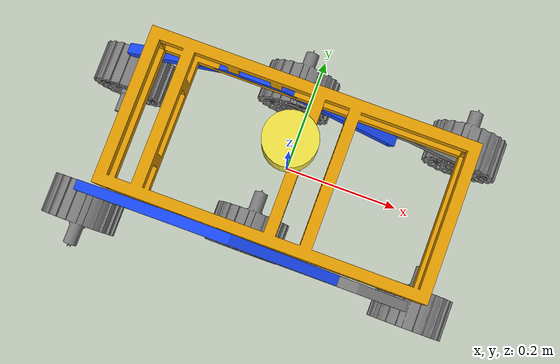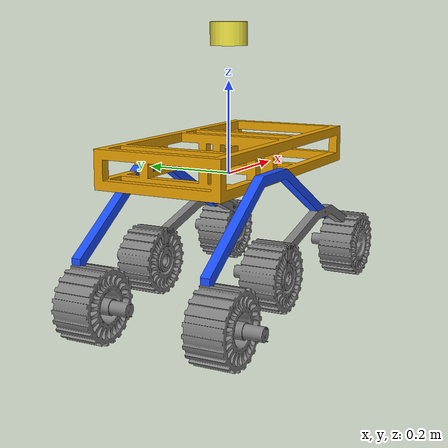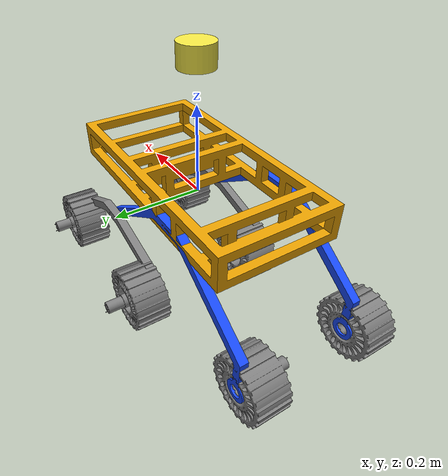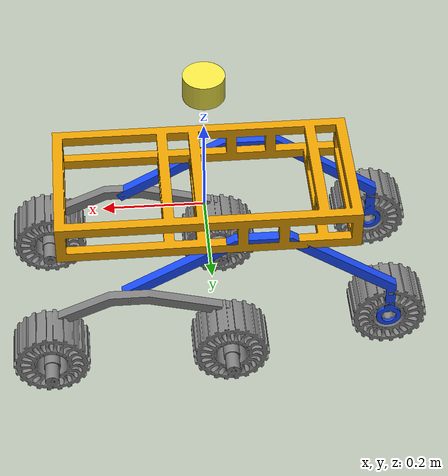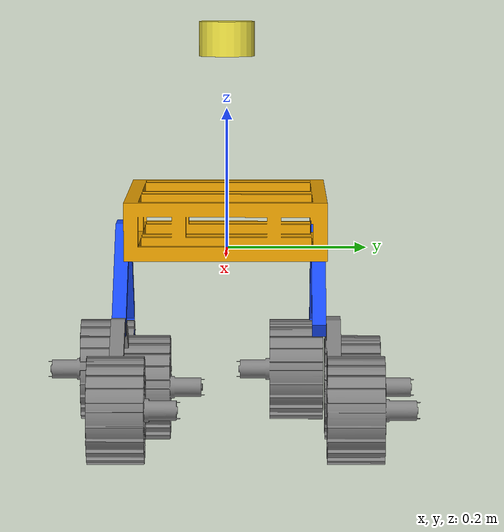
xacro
<?xml version="1.0"?>

<robot name="my_rover"
       xmlns:xacro="http://www.ros.org/wiki/xacro">

    <!-- Includes -->
    <xacro:include filename="$(find my_rover_description)/urdf/links/base_link.xacro"/>
    <xacro:include filename="$(find my_rover_description)/urdf/links/rocker.xacro"/>
    <xacro:include filename="$(find my_rover_description)/urdf/links/bogie.xacro"/>
    <xacro:include filename="$(find my_rover_description)/urdf/links/wheel.xacro"/>
    <xacro:include filename="$(find my_rover_description)/urdf/properties.xacro"/>

    <!-- Base -->
    <xacro:base_link/>

    <!-- ROCKERS                                             -->

    <xacro:rocker
        name="left_rocker"
        parent="base_link"
        xyz="-0.1037985 0.1413 0.02"
        rpy="1.5708 0 0"/>

    <xacro:rocker
        name="right_rocker"
        parent="base_link"
        xyz="-0.1037985 -0.1413 0.02"
        rpy="1.5708 0 0"/>

    <!-- BOGIES                                              -->

   <xacro:bogie
    name="left_bogie"
    parent="left_rocker"
    xyz="0.26214225 -0.20  -0.10"
    rpy="3.14159 0 0"/>

   <xacro:bogie
    name="right_bogie"
    parent="right_rocker"
    xyz="0.26214225 -0.20 -0.08"
    rpy="-3.14159 0 0"/>

    <!-- rear left                                 -->

    <xacro:wheel
        name="left_rear_wheel"
        parent="left_rocker"
        xyz="-0.25707953 -0.22712987 0"
        rpy="0 0 0"/>

    <!-- rear right                                   -->

    <xacro:wheel
        name="right_rear_wheel"
        parent="right_rocker"
        xyz="-0.25707953 -0.22712987 0"
        rpy="0 0 0"/>

    <!-- RIGHT REAR                                         -->

    <xacro:wheel
        name="right_middle_wheel"
        parent="right_bogie"
        xyz="-0.195206085 0.025 -0.100411217"
        rpy="0 0 0"/>
    <!-- LEFT REAR                                          -->

    <xacro:wheel
        name="left_middle_wheel"
        parent="left_bogie"
        xyz="-0.195206085 0.025 -0.100411217"
        rpy="0 0 0"/>

    <!-- RIGHT MIDDLE                                       -->

    <xacro:wheel
        name="right_front_wheel"
        parent="right_bogie"
        xyz="0.157949245 0.025 -0.130411217"
        rpy="0 0 0"/>

    <!-- LEFT                                        -->

    <xacro:wheel
        name="left_front_wheel"
        parent="left_bogie"
        xyz="0.157949245 0.025 -0.100411217"
        rpy="0 0 0"/>

  <!-- Simulated LiDAR -->
  <link name="lidar_link">
    <visual>
      <geometry>
        <cylinder radius="0.04" length="0.05"/>
      </geometry>
    </visual>

    <collision>
      <geometry>
        <cylinder radius="0.04" length="0.05"/>
      </geometry>
    </collision>

    <inertial>
      <mass value="0.1"/>
      <inertia
        ixx="0.0001"
        ixy="0.0"
        ixz="0.0"
        iyy="0.0001"
        iyz="0.0"
        izz="0.0001"/>
    </inertial>
  </link>

  <joint name="lidar_joint" type="fixed">
    <parent link="base_link"/>
    <child link="lidar_link"/>
    <origin xyz="0 0 0.30" rpy="0 0 0"/>
  </joint>
    <gazebo reference="lidar_link">
    <sensor name="lidar" type="gpu_lidar">
  <topic>/scan</topic>
  <update_rate>10</update_rate>

  <ray>
    <scan>
      <horizontal>
        <samples>360</samples>
        <resolution>1</resolution>
        <min_angle>-3.14159</min_angle>
        <max_angle>3.14159</max_angle>
      </horizontal>
    </scan>

    <range>
      <min>0.12</min>
      <max>12.0</max>
      <resolution>0.01</resolution>
    </range>
  </ray>

  <always_on>true</always_on>
  <visualize>true</visualize>
</sensor>
  </gazebo>

  <ros2_control name="GazeboSystem" type="system">
    <hardware>
      <plugin>gz_ros2_control/GazeboSimSystem</plugin>
    </hardware>

    <joint name="left_front_wheel_joint">
      <command_interface name="velocity"/>
      <state_interface name="position"/>
      <state_interface name="velocity"/>
    </joint>

    <joint name="left_middle_wheel_joint">
      <command_interface name="velocity"/>
      <state_interface name="position"/>
      <state_interface name="velocity"/>
    </joint>

    <joint name="left_rear_wheel_joint">
      <command_interface name="velocity"/>
      <state_interface name="position"/>
      <state_interface name="velocity"/>
    </joint>

    <joint name="right_front_wheel_joint">
      <command_interface name="velocity"/>
      <state_interface name="position"/>
      <state_interface name="velocity"/>
    </joint>

    <joint name="right_middle_wheel_joint">
      <command_interface name="velocity"/>
      <state_interface name="position"/>
      <state_interface name="velocity"/>
    </joint>

    <joint name="right_rear_wheel_joint">
      <command_interface name="velocity"/>
      <state_interface name="position"/>
      <state_interface name="velocity"/>
    </joint>
  </ros2_control>

    <gazebo>
    <plugin
      filename="gz_ros2_control-system"
      name="gz_ros2_control::GazeboSimROS2ControlPlugin">
      <parameters>$(find my_rover_description)/config/ros2_controllers.yaml</parameters>
    </plugin>
  </gazebo>

</robot>

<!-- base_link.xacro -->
<robot xmlns:xacro="http://www.ros.org/wiki/xacro">

    <xacro:macro name="base_link">

        <link name="base_link">

            <inertial>
                <origin
                    xyz="-0.013341170590699567 0.0 0.01"
                    rpy="0 0 0"/>

                <mass value="7.495180000000002"/>

                <inertia
                    ixx="0.08260502054366667"
                    ixy="4.5693013817071915e-17"
                    ixz="8.673617379884035e-19"
                    iyy="0.2689295125124481"
                    iyz="0.0"
                    izz="0.3510348543894482"/>
            </inertial>

            <visual>
                <origin xyz="0 0 0" rpy="0 0 0"/>

                <geometry>
                    <mesh
                        filename="package://my_rover_description/meshes/visual/base_link.stl"
                        scale="0.001 0.001 0.001"/>
                </geometry>
            </visual>

            <collision>
                <origin xyz="0 0 0" rpy="0 0 0"/>

                <geometry>
                    <mesh
                        filename="package://my_rover_description/meshes/visual/base_link.stl"
                        scale="0.001 0.001 0.001"/>
                </geometry>
            </collision>

        </link>

    </xacro:macro>

</robot>

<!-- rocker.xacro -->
<robot xmlns:xacro="http://www.ros.org/wiki/xacro">

  <xacro:macro name="rocker" params="name parent xyz rpy">

    <link name="${name}">

      <inertial>
        <origin xyz="0 0 0" rpy="0 0 0"/>
        <mass value="2.284844437127401"/>

        <inertia
          ixx="0.010865956621585498"
          ixy="-0.013180993446849481"
          ixz="-1.27e-18"
          iyy="0.06708516759397543"
          iyz="1.15e-17"
          izz="0.07779880125307026"/>
      </inertial>

      <visual>
        <origin xyz="0 0 0" rpy="0 0 0"/>
        <geometry>
          <mesh
            filename="package://my_rover_description/meshes/visual/rocker_link.stl"
            scale="0.001 0.001 0.001"/>
        </geometry>

        <material name="blue">
          <color rgba="0.1 0.3 1.0 1.0"/>
        </material>
      </visual>

      <collision>
        <origin xyz="0 0 0" rpy="0 0 0"/>
        <geometry>
          <mesh
            filename="package://my_rover_description/meshes/visual/rocker_link.stl"
            scale="0.001 0.001 0.001"/>
        </geometry>
      </collision>

    </link>

    <joint name="${name}_joint" type="revolute">

      <origin xyz="${xyz}" rpy="${rpy}"/>

      <parent link="${parent}"/>
      <child link="${name}"/>

      <axis xyz="0 0 1"/>

      <limit
        lower="-0.610865"
        upper="0.610865"
        effort="1000"
        velocity="2.0"/>

      <dynamics
        damping="5.0"
        friction="0.5"/>

    </joint>

  </xacro:macro>

</robot>

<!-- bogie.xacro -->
<robot xmlns:xacro="http://www.ros.org/wiki/xacro">

  <xacro:macro name="bogie" params="name parent xyz rpy">

    <link name="${name}">

      <inertial>
        <origin xyz="0 0 0" rpy="0 0 0"/>
        <mass value="1.7494588983667054"/>

        <inertia
          ixx="0.0027534717804587362"
          ixy="-7.962312379821606e-06"
          ixz="-1.09e-17"
          iyy="0.030789481894890357"
          iyz="2.49e-19"
          izz="0.03342632308212458"/>
      </inertial>

      <visual>
        <origin xyz="0 0 0" rpy="0 0 0"/>

        <geometry>
          <mesh
            filename="package://my_rover_description/meshes/visual/bogie.stl"
            scale="0.001 0.001 0.001"/>
        </geometry>

        <material name="gray">
  <color rgba="0.5 0.5 0.5 1.0"/>
</material>
      </visual>

      <collision>
        <origin xyz="0 0 0" rpy="0 0 0"/>

        <geometry>
          <mesh
            filename="package://my_rover_description/meshes/visual/bogie.stl"
            scale="0.001 0.001 0.001"/>
        </geometry>
      </collision>

    </link>

    <joint name="${name}_joint" type="revolute">

      <origin xyz="${xyz}" rpy="${rpy}"/>

      <parent link="${parent}"/>
      <child link="${name}"/>

      <axis xyz="0 0 1"/>

      <limit
        lower="-0.610865"
        upper="0.523599"
        effort="1000"
        velocity="2.0"/>

      <dynamics
        damping="3.0"
        friction="0.5"/>

    </joint>

  </xacro:macro>

</robot>

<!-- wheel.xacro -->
<robot xmlns:xacro="http://www.ros.org/wiki/xacro">

  <xacro:macro name="wheel"
               params="name parent xyz rpy">

    <link name="${name}">

      <inertial>
        <origin xyz="0 0 0" rpy="0 0 0"/>
        <mass value="1.25"/>

        <inertia
          ixx="0.002753"
          ixy="7.82e-10"
          ixz="7.70e-10"
          iyy="0.002753"
          iyz="-1.09e-10"
          izz="0.004233"/>
      </inertial>

      <visual>

        <origin xyz="0 0 0"
                rpy="0 0 0"/>

        <geometry>

          <mesh
            filename="package://my_rover_description/meshes/visual/right_front_wheel.stl"
            scale="${mesh_scale}"/>

        </geometry>

       <material name="gray">
  <color rgba="0.5 0.5 0.5 1.0"/>
</material>

      </visual>

      <collision>

        <origin xyz="0 0 0"
                rpy="0 0 0"/>

        <geometry>

          <mesh
            filename="package://my_rover_description/meshes/visual/right_front_wheel.stl"
            scale="${mesh_scale}"/>

        </geometry>

      </collision>

    </link>

    <joint name="${name}_joint"
           type="continuous">

      <parent link="${parent}"/>
      <child link="${name}"/>

      <origin xyz="${xyz}" rpy="${rpy}"/>

      <axis xyz="0 0 1"/>

      <dynamics
        damping="0.05"
        friction="0.01"/>

    </joint>

  </xacro:macro>

</robot>

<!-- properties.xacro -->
<robot xmlns:xacro="http://www.ros.org/wiki/xacro">

  <!-- Mesh Scale -->
  <xacro:property name="mesh_scale" value="0.001 0.001 0.001"/>

  <!-- Rocker Position -->
  <xacro:property name="rocker_x" value="0.0"/>
  <xacro:property name="rocker_y" value="0.25"/>
  <xacro:property name="rocker_z" value="0.0"/>

  <!-- Bogie Position -->
  <xacro:property name="bogie_x" value="0.25"/>
  <xacro:property name="bogie_y" value="0.0"/>
  <xacro:property name="bogie_z" value="-0.05"/>

</robot>
